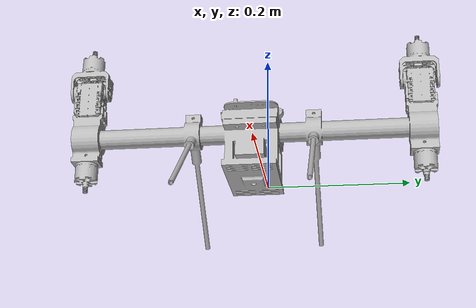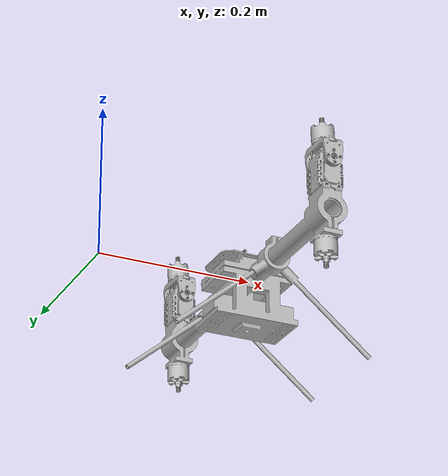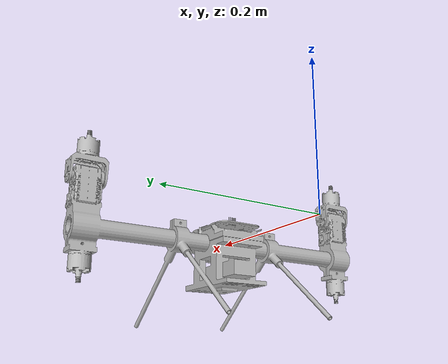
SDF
<?xml version="1.0" ?>
<sdf version="1.6">
	<model name="bi_quad">
		<link name="base">
			<self_collide>false</self_collide>
			<pose>0.1993142586531725 0.0007662019443860381 0.007308524084885006 0.0 -0.0 0.0</pose>
			<inertial>
				<pose>0.0 0.0 0.0 0 0 0</pose>
				<mass>1.9525751921458985</mass>
				<inertia>
					<ixx>0.05420753138479871</ixx>
					<ixy>0.0001177924686405842</ixy>
					<ixz>6.837947817375323e-06</ixz>
					<iyy>0.0038734227472525962</iyy>
					<iyz>5.313259938331419e-05</iyz>
					<izz>0.05205338074297329</izz>
				</inertia>
			</inertial>
			<collision name="base_collision">
				<geometry>
					<mesh>
						<uri>model://bi_quad/meshes/CAD/base.stl</uri>
						<scale>0.001 0.001 0.001</scale>
					</mesh>
				</geometry>
			</collision>
			<visual name="base_visual">
				<geometry>
					<mesh>
						<uri>model://bi_quad/meshes/CAD/base.stl</uri>
						<scale>0.001 0.001 0.001</scale>
					</mesh>
				</geometry>
			</visual>
		</link>
		<link name="left_tilt">
			<self_collide>false</self_collide>
			<pose>0.1970802016271777 0.20867943375924966 0.0903633202468961 0.0 -0.0 0.0</pose>
			<inertial>
				<pose>0.0 0.0 0.0 0 0 0</pose>
				<mass>0.11178225346146682</mass>
				<inertia>
					<ixx>4.599569507079622e-05</ixx>
					<ixy>3.4183955813915646e-08</ixy>
					<ixz>1.3992897841678344e-06</ixz>
					<iyy>3.055340095657755e-05</iyy>
					<iyz>-4.072897203190706e-07</iyz>
					<izz>2.7747241743645647e-05</izz>
				</inertia>
			</inertial>
			<collision name="left_tilt_collision">
				<geometry>
					<mesh>
						<uri>model://bi_quad/meshes/CAD/left_tilt.stl</uri>
						<scale>0.001 0.001 0.001</scale>
					</mesh>
				</geometry>
			</collision>
			<visual name="left_tilt_visual">
				<geometry>
					<mesh>
						<uri>model://bi_quad/meshes/CAD/left_tilt.stl</uri>
						<scale>0.001 0.001 0.001</scale>
					</mesh>
				</geometry>
			</visual>
		</link>
		<link name="right_tilt">
			<self_collide>false</self_collide>
			<pose>0.1988358901875466 -0.20757372230526244 0.09038961426123086 0.0 -0.0 0.0</pose>
			<inertial>
				<pose>0.0 0.0 0.0 0 0 0</pose>
				<mass>0.11178225346146678</mass>
				<inertia>
					<ixx>4.605310565699767e-05</ixx>
					<ixy>1.4271970499635245e-09</ixy>
					<ixz>6.437483614664786e-07</ixz>
					<iyy>3.0533776883067535e-05</iyy>
					<iyz>-4.153988905954975e-08</iyz>
					<izz>2.7648072299791693e-05</izz>
				</inertia>
			</inertial>
			<collision name="right_tilt_collision">
				<geometry>
					<mesh>
						<uri>model://bi_quad/meshes/CAD/right_tilt.stl</uri>
						<scale>0.001 0.001 0.001</scale>
					</mesh>
				</geometry>
			</collision>
			<visual name="right_tilt_visual">
				<geometry>
					<mesh>
						<uri>model://bi_quad/meshes/CAD/right_tilt.stl</uri>
						<scale>0.001 0.001 0.001</scale>
					</mesh>
				</geometry>
			</visual>
		</link>
		<joint name="left_joint" type="revolute">
			<parent>base</parent>
			<child>left_tilt</child>
			<pose>0.0016285265354841272 -0.021312948760055832 -0.026363320246896197 0 0 0</pose>
			<axis>
				<xyz>4.926614671774132e-15 -1.0000000000000013 -5.545453557153425e-17</xyz>
				<limit>
					<lower>-0.7853981633974483</lower>
					<upper>0.7853981633974483</upper>
				</limit>
				<use_parent_model_frame>0</use_parent_model_frame>
			</axis>
		</joint>
		<joint name="right_joint" type="revolute">
			<parent>base</parent>
			<child>right_tilt</child>
			<pose>0.0010467769884695954 -0.021032214828628142 -0.026389614261231122 0 0 0</pose>
			<axis>
				<xyz>4.9404924595819466e-15 -1.000000000000001 -5.549181640493362e-17</xyz>
				<limit>
					<lower>0.0</lower>
					<upper>0.0</upper>
				</limit>
				<use_parent_model_frame>0</use_parent_model_frame>
			</axis>
		</joint>
	</model>
</sdf>
